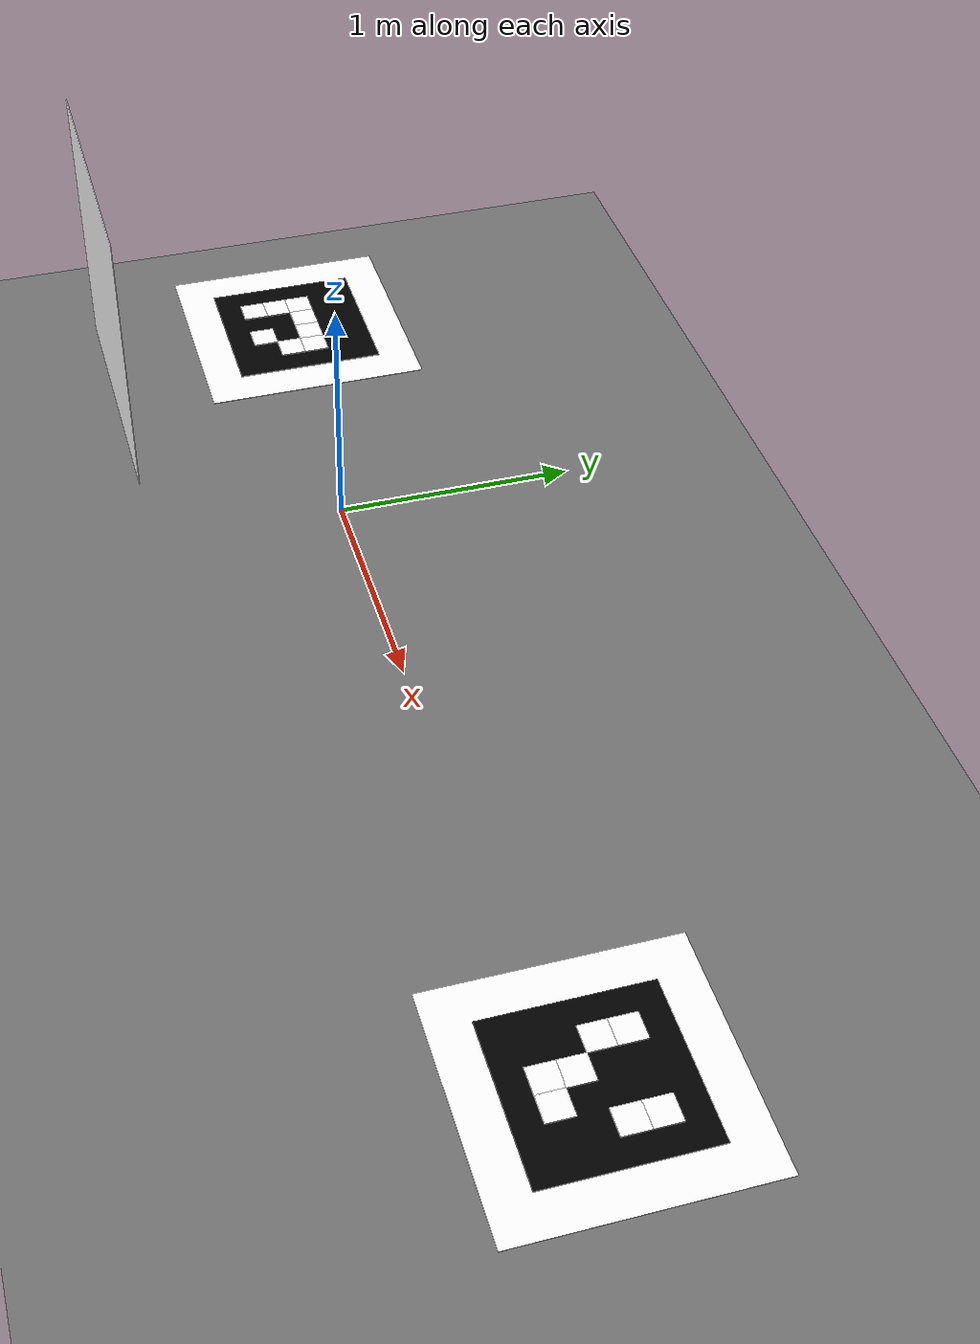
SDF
<sdf version="1.7">
 <world name="bus_individual_marker_visibility_test">
  <scene>
   <ambient>0.90 0.90 0.90 1</ambient>
   <background>0.70 0.70 0.70 1</background>
   <shadows>false</shadows>
  </scene>
  <plugin filename="ignition-gazebo-physics-system" name="ignition::gazebo::systems::Physics"/>
  <plugin filename="ignition-gazebo-user-commands-system" name="ignition::gazebo::systems::UserCommands"/>
  <plugin filename="ignition-gazebo-scene-broadcaster-system" name="ignition::gazebo::systems::SceneBroadcaster"/>
  <plugin filename="ignition-gazebo-sensors-system" name="ignition::gazebo::systems::Sensors">
   <render_engine>ogre2</render_engine>
  </plugin>
  <light name="sun" type="directional">
   <visualize>false</visualize>
   <pose>0 0 10 0 0 0</pose>
   <diffuse>1 1 1 1</diffuse>
   <specular>0.3 0.3 0.3 1</specular>
   <direction>-0.5 0.2 -1</direction>
  </light>
  <model name="ground_plane">
   <static>true</static>
   <link name="link">
    <visual name="visual">
     <geometry><box><size>30 10 0.05</size></box></geometry>
     <material><ambient>0.45 0.45 0.45 1</ambient><diffuse>0.45 0.45 0.45 1</diffuse></material>
    </visual>
   </link>
   <pose>0 0 -0.025 0 0 0</pose>
  </model>
  <include>
   <uri>model://aruco_marker_01</uri>
   <name>bus_marker_01_floor_mid_front</name>
   <pose>-0.80 0.00 0.400 0 0 0</pose>
  </include>
  <include>
   <uri>model://aruco_marker_03</uri>
   <name>bus_marker_03_floor_rear</name>
   <pose>3.20 0.00 0.400 0 0 0</pose>
  </include>
  <include>
   <uri>model://aruco_marker_05</uri>
   <name>bus_marker_05_left_mid_high</name>
   <pose>0.80 -0.95 1.80 -1.57079633 0 0</pose>
  </include>
  <model name="front_static_camera">
   <static>true</static>
   <pose>-3.90 0.0 2.85 0 0.69813170 0</pose>
   <link name="link">
    <sensor name="front_static_camera" type="camera">
     <visualize>false</visualize>
     <always_on>true</always_on>
     <update_rate>15</update_rate>
     <topic>/front_static_camera/image</topic>
     <camera>
      <horizontal_fov>1.57079633</horizontal_fov>
      <image><width>640</width><height>480</height><format>R8G8B8</format></image>
      <clip><near>0.05</near><far>30</far></clip>
     </camera>
    </sensor>
   </link>
  </model>
  <model name="rear_static_camera">
   <static>true</static>
   <pose>5.70 0.0 2.85 0 0.69813170 3.14159265</pose>
   <link name="link">
    <sensor name="rear_static_camera" type="camera">
     <visualize>false</visualize>
     <always_on>true</always_on>
     <update_rate>15</update_rate>
     <topic>/rear_static_camera/image</topic>
     <camera>
      <horizontal_fov>1.57079633</horizontal_fov>
      <image><width>640</width><height>480</height><format>R8G8B8</format></image>
      <clip><near>0.05</near><far>30</far></clip>
     </camera>
    </sensor>
   </link>
  </model>
 </world>
</sdf>

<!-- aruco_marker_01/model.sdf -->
<sdf version="1.7">
  <model name="aruco_marker_01">
    <static>true</static>
    <link name="link">

      <visual name="white_outer_board">
        <cast_shadows>false</cast_shadows>
        <pose>0 0 0 0 0 0</pose>
        <geometry>
          <box>
            <size>0.900000 0.900000 0.002000</size>
          </box>
        </geometry>
        <material>
          <ambient>1 1 1 1</ambient>
          <diffuse>1 1 1 1</diffuse>
          <emissive>1 1 1 1</emissive>
        </material>
      </visual>

      <visual name="black_marker_base">
        <cast_shadows>false</cast_shadows>
        <pose>0 0 0.003000 0 0 0</pose>
        <geometry>
          <box>
            <size>0.600000 0.600000 0.004000</size>
          </box>
        </geometry>
        <material>
          <ambient>0 0 0 1</ambient>
          <diffuse>0 0 0 1</diffuse>
          <emissive>0 0 0 1</emissive>
        </material>
      </visual>

      <visual name="white_cell_2_1">
        <cast_shadows>false</cast_shadows>
        <pose>-0.150000 0.050000 0.006500 0 0 0</pose>
        <geometry>
          <box>
            <size>0.102000 0.102000 0.003000</size>
          </box>
        </geometry>
        <material>
          <ambient>1 1 1 1</ambient>
          <diffuse>1 1 1 1</diffuse>
          <emissive>1 1 1 1</emissive>
        </material>
      </visual>

      <visual name="white_cell_2_2">
        <cast_shadows>false</cast_shadows>
        <pose>-0.050000 0.050000 0.006500 0 0 0</pose>
        <geometry>
          <box>
            <size>0.102000 0.102000 0.003000</size>
          </box>
        </geometry>
        <material>
          <ambient>1 1 1 1</ambient>
          <diffuse>1 1 1 1</diffuse>
          <emissive>1 1 1 1</emissive>
        </material>
      </visual>

      <visual name="white_cell_2_3">
        <cast_shadows>false</cast_shadows>
        <pose>0.050000 0.050000 0.006500 0 0 0</pose>
        <geometry>
          <box>
            <size>0.102000 0.102000 0.003000</size>
          </box>
        </geometry>
        <material>
          <ambient>1 1 1 1</ambient>
          <diffuse>1 1 1 1</diffuse>
          <emissive>1 1 1 1</emissive>
        </material>
      </visual>

      <visual name="white_cell_2_4">
        <cast_shadows>false</cast_shadows>
        <pose>0.150000 0.050000 0.006500 0 0 0</pose>
        <geometry>
          <box>
            <size>0.102000 0.102000 0.003000</size>
          </box>
        </geometry>
        <material>
          <ambient>1 1 1 1</ambient>
          <diffuse>1 1 1 1</diffuse>
          <emissive>1 1 1 1</emissive>
        </material>
      </visual>

      <visual name="white_cell_3_1">
        <cast_shadows>false</cast_shadows>
        <pose>-0.150000 -0.050000 0.006500 0 0 0</pose>
        <geometry>
          <box>
            <size>0.102000 0.102000 0.003000</size>
          </box>
        </geometry>
        <material>
          <ambient>1 1 1 1</ambient>
          <diffuse>1 1 1 1</diffuse>
          <emissive>1 1 1 1</emissive>
        </material>
      </visual>

      <visual name="white_cell_3_4">
        <cast_shadows>false</cast_shadows>
        <pose>0.150000 -0.050000 0.006500 0 0 0</pose>
        <geometry>
          <box>
            <size>0.102000 0.102000 0.003000</size>
          </box>
        </geometry>
        <material>
          <ambient>1 1 1 1</ambient>
          <diffuse>1 1 1 1</diffuse>
          <emissive>1 1 1 1</emissive>
        </material>
      </visual>

      <visual name="white_cell_4_1">
        <cast_shadows>false</cast_shadows>
        <pose>-0.150000 -0.150000 0.006500 0 0 0</pose>
        <geometry>
          <box>
            <size>0.102000 0.102000 0.003000</size>
          </box>
        </geometry>
        <material>
          <ambient>1 1 1 1</ambient>
          <diffuse>1 1 1 1</diffuse>
          <emissive>1 1 1 1</emissive>
        </material>
      </visual>

      <visual name="white_cell_4_3">
        <cast_shadows>false</cast_shadows>
        <pose>0.050000 -0.150000 0.006500 0 0 0</pose>
        <geometry>
          <box>
            <size>0.102000 0.102000 0.003000</size>
          </box>
        </geometry>
        <material>
          <ambient>1 1 1 1</ambient>
          <diffuse>1 1 1 1</diffuse>
          <emissive>1 1 1 1</emissive>
        </material>
      </visual>

    </link>
  </model>
</sdf>

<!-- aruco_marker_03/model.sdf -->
<sdf version="1.7">
  <model name="aruco_marker_03">
    <static>true</static>
    <link name="link">

      <visual name="white_outer_board">
        <cast_shadows>false</cast_shadows>
        <pose>0 0 0 0 0 0</pose>
        <geometry>
          <box>
            <size>0.900000 0.900000 0.002000</size>
          </box>
        </geometry>
        <material>
          <ambient>1 1 1 1</ambient>
          <diffuse>1 1 1 1</diffuse>
          <emissive>1 1 1 1</emissive>
        </material>
      </visual>

      <visual name="black_marker_base">
        <cast_shadows>false</cast_shadows>
        <pose>0 0 0.003000 0 0 0</pose>
        <geometry>
          <box>
            <size>0.600000 0.600000 0.004000</size>
          </box>
        </geometry>
        <material>
          <ambient>0 0 0 1</ambient>
          <diffuse>0 0 0 1</diffuse>
          <emissive>0 0 0 1</emissive>
        </material>
      </visual>

      <visual name="white_cell_1_1">
        <cast_shadows>false</cast_shadows>
        <pose>-0.150000 0.150000 0.006500 0 0 0</pose>
        <geometry>
          <box>
            <size>0.102000 0.102000 0.003000</size>
          </box>
        </geometry>
        <material>
          <ambient>1 1 1 1</ambient>
          <diffuse>1 1 1 1</diffuse>
          <emissive>1 1 1 1</emissive>
        </material>
      </visual>

      <visual name="white_cell_1_4">
        <cast_shadows>false</cast_shadows>
        <pose>0.150000 0.150000 0.006500 0 0 0</pose>
        <geometry>
          <box>
            <size>0.102000 0.102000 0.003000</size>
          </box>
        </geometry>
        <material>
          <ambient>1 1 1 1</ambient>
          <diffuse>1 1 1 1</diffuse>
          <emissive>1 1 1 1</emissive>
        </material>
      </visual>

      <visual name="white_cell_2_1">
        <cast_shadows>false</cast_shadows>
        <pose>-0.150000 0.050000 0.006500 0 0 0</pose>
        <geometry>
          <box>
            <size>0.102000 0.102000 0.003000</size>
          </box>
        </geometry>
        <material>
          <ambient>1 1 1 1</ambient>
          <diffuse>1 1 1 1</diffuse>
          <emissive>1 1 1 1</emissive>
        </material>
      </visual>

      <visual name="white_cell_2_4">
        <cast_shadows>false</cast_shadows>
        <pose>0.150000 0.050000 0.006500 0 0 0</pose>
        <geometry>
          <box>
            <size>0.102000 0.102000 0.003000</size>
          </box>
        </geometry>
        <material>
          <ambient>1 1 1 1</ambient>
          <diffuse>1 1 1 1</diffuse>
          <emissive>1 1 1 1</emissive>
        </material>
      </visual>

      <visual name="white_cell_3_2">
        <cast_shadows>false</cast_shadows>
        <pose>-0.050000 -0.050000 0.006500 0 0 0</pose>
        <geometry>
          <box>
            <size>0.102000 0.102000 0.003000</size>
          </box>
        </geometry>
        <material>
          <ambient>1 1 1 1</ambient>
          <diffuse>1 1 1 1</diffuse>
          <emissive>1 1 1 1</emissive>
        </material>
      </visual>

      <visual name="white_cell_4_2">
        <cast_shadows>false</cast_shadows>
        <pose>-0.050000 -0.150000 0.006500 0 0 0</pose>
        <geometry>
          <box>
            <size>0.102000 0.102000 0.003000</size>
          </box>
        </geometry>
        <material>
          <ambient>1 1 1 1</ambient>
          <diffuse>1 1 1 1</diffuse>
          <emissive>1 1 1 1</emissive>
        </material>
      </visual>

      <visual name="white_cell_4_3">
        <cast_shadows>false</cast_shadows>
        <pose>0.050000 -0.150000 0.006500 0 0 0</pose>
        <geometry>
          <box>
            <size>0.102000 0.102000 0.003000</size>
          </box>
        </geometry>
        <material>
          <ambient>1 1 1 1</ambient>
          <diffuse>1 1 1 1</diffuse>
          <emissive>1 1 1 1</emissive>
        </material>
      </visual>

    </link>
  </model>
</sdf>

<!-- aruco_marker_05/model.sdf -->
<sdf version="1.7">
  <model name="aruco_marker_05">
    <static>true</static>
    <link name="link">

      <visual name="white_outer_board">
        <cast_shadows>false</cast_shadows>
        <pose>0 0 0 0 0 0</pose>
        <geometry>
          <box>
            <size>0.900000 0.900000 0.002000</size>
          </box>
        </geometry>
        <material>
          <ambient>1 1 1 1</ambient>
          <diffuse>1 1 1 1</diffuse>
          <emissive>1 1 1 1</emissive>
        </material>
      </visual>

      <visual name="black_marker_base">
        <cast_shadows>false</cast_shadows>
        <pose>0 0 0.003000 0 0 0</pose>
        <geometry>
          <box>
            <size>0.600000 0.600000 0.004000</size>
          </box>
        </geometry>
        <material>
          <ambient>0 0 0 1</ambient>
          <diffuse>0 0 0 1</diffuse>
          <emissive>0 0 0 1</emissive>
        </material>
      </visual>

      <visual name="white_cell_1_2">
        <cast_shadows>false</cast_shadows>
        <pose>-0.050000 0.150000 0.006500 0 0 0</pose>
        <geometry>
          <box>
            <size>0.102000 0.102000 0.003000</size>
          </box>
        </geometry>
        <material>
          <ambient>1 1 1 1</ambient>
          <diffuse>1 1 1 1</diffuse>
          <emissive>1 1 1 1</emissive>
        </material>
      </visual>

      <visual name="white_cell_1_3">
        <cast_shadows>false</cast_shadows>
        <pose>0.050000 0.150000 0.006500 0 0 0</pose>
        <geometry>
          <box>
            <size>0.102000 0.102000 0.003000</size>
          </box>
        </geometry>
        <material>
          <ambient>1 1 1 1</ambient>
          <diffuse>1 1 1 1</diffuse>
          <emissive>1 1 1 1</emissive>
        </material>
      </visual>

      <visual name="white_cell_1_4">
        <cast_shadows>false</cast_shadows>
        <pose>0.150000 0.150000 0.006500 0 0 0</pose>
        <geometry>
          <box>
            <size>0.102000 0.102000 0.003000</size>
          </box>
        </geometry>
        <material>
          <ambient>1 1 1 1</ambient>
          <diffuse>1 1 1 1</diffuse>
          <emissive>1 1 1 1</emissive>
        </material>
      </visual>

      <visual name="white_cell_2_1">
        <cast_shadows>false</cast_shadows>
        <pose>-0.150000 0.050000 0.006500 0 0 0</pose>
        <geometry>
          <box>
            <size>0.102000 0.102000 0.003000</size>
          </box>
        </geometry>
        <material>
          <ambient>1 1 1 1</ambient>
          <diffuse>1 1 1 1</diffuse>
          <emissive>1 1 1 1</emissive>
        </material>
      </visual>

      <visual name="white_cell_2_4">
        <cast_shadows>false</cast_shadows>
        <pose>0.150000 0.050000 0.006500 0 0 0</pose>
        <geometry>
          <box>
            <size>0.102000 0.102000 0.003000</size>
          </box>
        </geometry>
        <material>
          <ambient>1 1 1 1</ambient>
          <diffuse>1 1 1 1</diffuse>
          <emissive>1 1 1 1</emissive>
        </material>
      </visual>

      <visual name="white_cell_3_1">
        <cast_shadows>false</cast_shadows>
        <pose>-0.150000 -0.050000 0.006500 0 0 0</pose>
        <geometry>
          <box>
            <size>0.102000 0.102000 0.003000</size>
          </box>
        </geometry>
        <material>
          <ambient>1 1 1 1</ambient>
          <diffuse>1 1 1 1</diffuse>
          <emissive>1 1 1 1</emissive>
        </material>
      </visual>

      <visual name="white_cell_3_2">
        <cast_shadows>false</cast_shadows>
        <pose>-0.050000 -0.050000 0.006500 0 0 0</pose>
        <geometry>
          <box>
            <size>0.102000 0.102000 0.003000</size>
          </box>
        </geometry>
        <material>
          <ambient>1 1 1 1</ambient>
          <diffuse>1 1 1 1</diffuse>
          <emissive>1 1 1 1</emissive>
        </material>
      </visual>

      <visual name="white_cell_4_1">
        <cast_shadows>false</cast_shadows>
        <pose>-0.150000 -0.150000 0.006500 0 0 0</pose>
        <geometry>
          <box>
            <size>0.102000 0.102000 0.003000</size>
          </box>
        </geometry>
        <material>
          <ambient>1 1 1 1</ambient>
          <diffuse>1 1 1 1</diffuse>
          <emissive>1 1 1 1</emissive>
        </material>
      </visual>

      <visual name="white_cell_4_2">
        <cast_shadows>false</cast_shadows>
        <pose>-0.050000 -0.150000 0.006500 0 0 0</pose>
        <geometry>
          <box>
            <size>0.102000 0.102000 0.003000</size>
          </box>
        </geometry>
        <material>
          <ambient>1 1 1 1</ambient>
          <diffuse>1 1 1 1</diffuse>
          <emissive>1 1 1 1</emissive>
        </material>
      </visual>

      <visual name="white_cell_4_4">
        <cast_shadows>false</cast_shadows>
        <pose>0.150000 -0.150000 0.006500 0 0 0</pose>
        <geometry>
          <box>
            <size>0.102000 0.102000 0.003000</size>
          </box>
        </geometry>
        <material>
          <ambient>1 1 1 1</ambient>
          <diffuse>1 1 1 1</diffuse>
          <emissive>1 1 1 1</emissive>
        </material>
      </visual>

    </link>
  </model>
</sdf>
